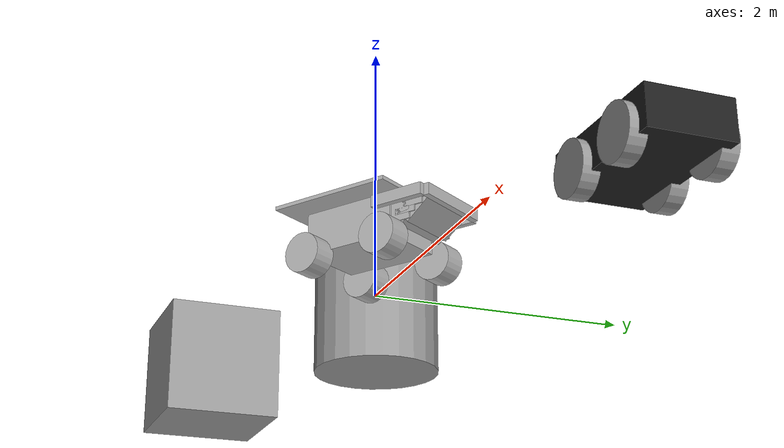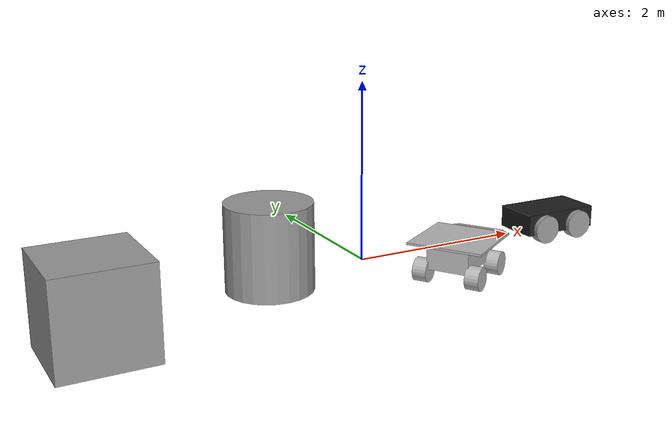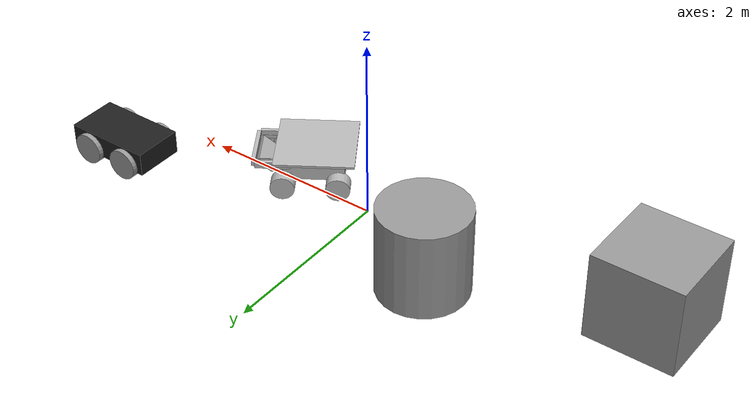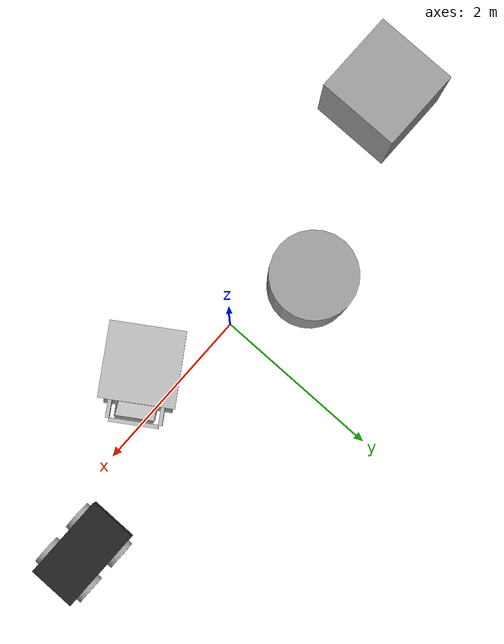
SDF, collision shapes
<?xml version='1.0'?>
<sdf version='1.7'>
  <model name='obstacles'>
    <link name='link_1'>
      <inertial>
        <mass>1</mass>
        <inertia>
          <ixx>0.166667</ixx>
          <ixy>0</ixy>
          <ixz>0</ixz>
          <iyy>0.166667</iyy>
          <iyz>0</iyz>
          <izz>0.166667</izz>
        </inertia>
      </inertial>
      <pose>-3.12052 -0.451753 0.207035 0 -0 0</pose>
      <visual name='visual'>
        <pose>0 0 0 0 -0 0</pose>
        <geometry>
          <box>
            <size>1 1 1</size>
          </box>
        </geometry>
        <material>
          <lighting>1</lighting>
          <script>
            <uri>file://media/materials/scripts/gazebo.material</uri>
            <name>Gazebo/Grey</name>
          </script>
          <shader type='pixel'/>
        </material>
        <transparency>0</transparency>
        <cast_shadows>1</cast_shadows>
      </visual>
      <collision name='collision'>
        <laser_retro>0</laser_retro>
        <max_contacts>10</max_contacts>
        <pose>0 0 0 0 -0 0</pose>
        <geometry>
          <box>
            <size>1 1 1</size>
          </box>
        </geometry>
        <surface>
          <friction>
            <ode>
              <mu>1</mu>
              <mu2>1</mu2>
              <fdir1>0 0 0</fdir1>
              <slip1>0</slip1>
              <slip2>0</slip2>
            </ode>
            <torsional>
              <coefficient>1</coefficient>
              <patch_radius>0</patch_radius>
              <surface_radius>0</surface_radius>
              <use_patch_radius>1</use_patch_radius>
              <ode>
                <slip>0</slip>
              </ode>
            </torsional>
          </friction>
          <bounce>
            <restitution_coefficient>0</restitution_coefficient>
            <threshold>1e+06</threshold>
          </bounce>
          <contact>
            <collide_without_contact>0</collide_without_contact>
            <collide_without_contact_bitmask>1</collide_without_contact_bitmask>
            <collide_bitmask>1</collide_bitmask>
            <ode>
              <soft_cfm>0</soft_cfm>
              <soft_erp>0.2</soft_erp>
              <kp>1e+13</kp>
              <kd>1</kd>
              <max_vel>0.01</max_vel>
              <min_depth>0</min_depth>
            </ode>
            <bullet>
              <split_impulse>1</split_impulse>
              <split_impulse_penetration_threshold>-0.01</split_impulse_penetration_threshold>
              <soft_cfm>0</soft_cfm>
              <soft_erp>0.2</soft_erp>
              <kp>1e+13</kp>
              <kd>1</kd>
            </bullet>
          </contact>
        </surface>
      </collision>
    </link>
    <link name='link_2'>
      <inertial>
        <mass>1</mass>
        <inertia>
          <ixx>0.145833</ixx>
          <ixy>0</ixy>
          <ixz>0</ixz>
          <iyy>0.145833</iyy>
          <iyz>0</iyz>
          <izz>0.125</izz>
        </inertia>
      </inertial>
      <pose>-0.964727 0.367734 0.207035 0 -0 0</pose>
      <visual name='visual'>
        <pose>0 0 0 0 -0 0</pose>
        <geometry>
          <cylinder>
            <radius>0.5</radius>
            <length>1</length>
          </cylinder>
        </geometry>
        <material>
          <lighting>1</lighting>
          <script>
            <uri>file://media/materials/scripts/gazebo.material</uri>
            <name>Gazebo/Grey</name>
          </script>
          <shader type='pixel'/>
        </material>
        <transparency>0</transparency>
        <cast_shadows>1</cast_shadows>
      </visual>
      <collision name='collision'>
        <laser_retro>0</laser_retro>
        <max_contacts>10</max_contacts>
        <pose>0 0 0 0 -0 0</pose>
        <geometry>
          <cylinder>
            <radius>0.5</radius>
            <length>1</length>
          </cylinder>
        </geometry>
        <surface>
          <friction>
            <ode>
              <mu>1</mu>
              <mu2>1</mu2>
              <fdir1>0 0 0</fdir1>
              <slip1>0</slip1>
              <slip2>0</slip2>
            </ode>
            <torsional>
              <coefficient>1</coefficient>
              <patch_radius>0</patch_radius>
              <surface_radius>0</surface_radius>
              <use_patch_radius>1</use_patch_radius>
              <ode>
                <slip>0</slip>
              </ode>
            </torsional>
          </friction>
          <bounce>
            <restitution_coefficient>0</restitution_coefficient>
            <threshold>1e+06</threshold>
          </bounce>
          <contact>
            <collide_without_contact>0</collide_without_contact>
            <collide_without_contact_bitmask>1</collide_without_contact_bitmask>
            <collide_bitmask>1</collide_bitmask>
            <ode>
              <soft_cfm>0</soft_cfm>
              <soft_erp>0.2</soft_erp>
              <kp>1e+13</kp>
              <kd>1</kd>
              <max_vel>0.01</max_vel>
              <min_depth>0</min_depth>
            </ode>
            <bullet>
              <split_impulse>1</split_impulse>
              <split_impulse_penetration_threshold>-0.01</split_impulse_penetration_threshold>
              <soft_cfm>0</soft_cfm>
              <soft_erp>0.2</soft_erp>
              <kp>1e+13</kp>
              <kd>1</kd>
            </bullet>
          </contact>
        </surface>
      </collision>
    </link>
    <model name='husky'>
      <pose>3.02374 0.473848 -0.14772 0 -0 0</pose>
      <link name='base_link'>
        <collision name='collision'>
          <pose>0 0 0.1 0 -0 0</pose>
          <geometry>
            <box>
              <size>1.0074 0.5709 0.2675</size>
            </box>
          </geometry>
        </collision>
        <inertial>
          <mass>33.855</mass>
          <pose>-0.085613 -0.00084 0.238145 0 -0 0</pose>
          <inertia>
            <ixx>2.2343</ixx>
            <ixy>-0.023642</ixy>
            <ixz>0.275174</ixz>
            <iyy>3.42518</iyy>
            <iyz>0.00239624</iyz>
            <izz>2.1241</izz>
          </inertia>
        </inertial>
        <visual name='base'>
          <pose>0 0 0 0 -0 0</pose>
          <geometry>
            <mesh>
              <uri>model://husky/meshes/base_link.stl</uri>
            </mesh>
          </geometry>
          <material>
            <script>
              <name>Gazebo/FlatBlack</name>
              <uri>__default__</uri>
            </script>
          </material>
        </visual>
        <visual name='top_plate'>
          <pose>0 0 0 0 -0 0</pose>
          <geometry>
            <mesh>
              <uri>model://husky/meshes/top_plate.stl</uri>
            </mesh>
          </geometry>
          <material>
            <script>
              <name>Gazebo/Yellow</name>
              <uri>__default__</uri>
            </script>
          </material>
        </visual>
        <visual name='front_bumper'>
          <pose>0.47 0 0.091 0 -0 0</pose>
          <geometry>
            <mesh>
              <uri>model://husky/meshes/bumper.stl</uri>
            </mesh>
          </geometry>
          <material>
            <script>
              <name>Gazebo/FlatBlack</name>
              <uri>__default__</uri>
            </script>
          </material>
        </visual>
        <visual name='rear_bumper'>
          <pose>-0.47 0 0.091 0 -0 3.141</pose>
          <geometry>
            <mesh>
              <uri>model://husky/meshes/bumper.stl</uri>
            </mesh>
          </geometry>
          <material>
            <script>
              <name>Gazebo/FlatBlack</name>
              <uri>__default__</uri>
            </script>
          </material>
        </visual>
        <visual name='user_rail'>
          <pose>0.272 0 0.245 0 -0 0</pose>
          <geometry>
            <mesh>
              <uri>model://husky/meshes/user_rail.stl</uri>
            </mesh>
          </geometry>
          <material>
            <script>
              <name>Gazebo/Grey</name>
              <uri>__default__</uri>
            </script>
          </material>
        </visual>
      </link>
      <link name='back_left_wheel'>
        <pose>-0.256 0.285475 0.035 0 -0 0</pose>
        <inertial>
          <mass>2.6357</mass>
          <pose>0 0 0 0 -0 0</pose>
          <inertia>
            <ixx>0.0246688</ixx>
            <ixy>0</ixy>
            <ixz>0</ixz>
            <iyy>0.0246688</iyy>
            <iyz>0</iyz>
            <izz>0.0441058</izz>
          </inertia>
        </inertial>
        <collision name='back_left_wheel_collision'>
          <pose>0 0 0 -1.5707 0 0</pose>
          <geometry>
            <cylinder>
              <radius>0.17775</radius>
              <length>0.1143</length>
            </cylinder>
          </geometry>
          <surface>
            <friction>
              <ode>
                <mu>100000</mu>
                <mu2>100000</mu2>
                <slip1>0</slip1>
                <slip2>0</slip2>
              </ode>
            </friction>
          </surface>
        </collision>
        <visual name='back_left_wheel'>
          <pose>0 0 0 -3.14159 0 0</pose>
          <geometry>
            <mesh>
              <uri>model://husky/meshes/wheel.stl</uri>
            </mesh>
          </geometry>
          <material>
            <script>
              <name>Gazebo/Grey</name>
              <uri>__default__</uri>
            </script>
          </material>
        </visual>
      </link>
      <joint name='back_left_joint' type='revolute'>
        <parent>base_link</parent>
        <child>back_left_wheel</child>
        <axis>
          <xyz expressed_in='__model__'>0 1 0</xyz>
          <limit>
            <lower>-1e+16</lower>
            <upper>1e+16</upper>
          </limit>
        </axis>
        <physics>
          <ode>
            <limit>
              <cfm>0</cfm>
              <erp>0.9</erp>
            </limit>
          </ode>
        </physics>
      </joint>
      <link name='back_right_wheel'>
        <pose>-0.256 -0.285475 0.035 0 -0 0</pose>
        <inertial>
          <mass>2.6357</mass>
          <pose>0 0 0 0 -0 0</pose>
          <inertia>
            <ixx>0.0246688</ixx>
            <ixy>0</ixy>
            <ixz>0</ixz>
            <iyy>0.0246688</iyy>
            <iyz>0</iyz>
            <izz>0.0441058</izz>
          </inertia>
        </inertial>
        <collision name='back_right_wheel_collision'>
          <pose>0 0 0 -1.5707 0 0</pose>
          <geometry>
            <cylinder>
              <radius>0.17775</radius>
              <length>0.1143</length>
            </cylinder>
          </geometry>
          <surface>
            <friction>
              <ode>
                <mu>100000</mu>
                <mu2>100000</mu2>
                <slip1>0</slip1>
                <slip2>0</slip2>
              </ode>
            </friction>
          </surface>
        </collision>
        <visual name='back_right_wheel'>
          <pose>0 0 0 -3.14159 0 0</pose>
          <geometry>
            <mesh>
              <uri>model://husky/meshes/wheel.stl</uri>
            </mesh>
          </geometry>
          <material>
            <script>
              <name>Gazebo/Grey</name>
              <uri>__default__</uri>
            </script>
          </material>
        </visual>
      </link>
      <joint name='back_right_joint' type='revolute'>
        <parent>base_link</parent>
        <child>back_right_wheel</child>
        <axis>
          <xyz expressed_in='__model__'>0 1 0</xyz>
          <limit>
            <lower>-1e+16</lower>
            <upper>1e+16</upper>
          </limit>
        </axis>
        <physics>
          <ode>
            <limit>
              <cfm>0</cfm>
              <erp>0.9</erp>
            </limit>
          </ode>
        </physics>
      </joint>
      <link name='front_left_wheel'>
        <pose>0.256 0.285475 0.035 0 -0 0</pose>
        <inertial>
          <mass>2.6357</mass>
          <pose>0 0 0 0 -0 0</pose>
          <inertia>
            <ixx>0.0246688</ixx>
            <ixy>0</ixy>
            <ixz>0</ixz>
            <iyy>0.0246688</iyy>
            <iyz>0</iyz>
            <izz>0.0441058</izz>
          </inertia>
        </inertial>
        <collision name='front_left_wheel_collision'>
          <pose>0 0 0 -1.5707 0 0</pose>
          <geometry>
            <cylinder>
              <radius>0.17775</radius>
              <length>0.1143</length>
            </cylinder>
          </geometry>
          <surface>
            <friction>
              <ode>
                <mu>100000</mu>
                <mu2>100000</mu2>
                <slip1>0</slip1>
                <slip2>0</slip2>
              </ode>
            </friction>
          </surface>
        </collision>
        <visual name='front_left_wheel'>
          <pose>0 0 0 -3.14159 0 0</pose>
          <geometry>
            <mesh>
              <uri>model://husky/meshes/wheel.stl</uri>
            </mesh>
          </geometry>
          <material>
            <script>
              <name>Gazebo/Grey</name>
              <uri>__default__</uri>
            </script>
          </material>
        </visual>
      </link>
      <joint name='front_left_joint' type='revolute'>
        <parent>base_link</parent>
        <child>front_left_wheel</child>
        <axis>
          <xyz expressed_in='__model__'>0 1 0</xyz>
          <limit>
            <lower>-1e+16</lower>
            <upper>1e+16</upper>
          </limit>
        </axis>
        <physics>
          <ode>
            <limit>
              <cfm>0</cfm>
              <erp>0.9</erp>
            </limit>
          </ode>
        </physics>
      </joint>
      <link name='front_right_wheel'>
        <pose>0.256 -0.285475 0.035 0 -0 0</pose>
        <inertial>
          <mass>2.6357</mass>
          <pose>0 0 0 0 -0 0</pose>
          <inertia>
            <ixx>0.0246688</ixx>
            <ixy>0</ixy>
            <ixz>0</ixz>
            <iyy>0.0246688</iyy>
            <iyz>0</iyz>
            <izz>0.0441058</izz>
          </inertia>
        </inertial>
        <collision name='front_right_wheel_collision'>
          <pose>0 0 0 -1.5707 0 0</pose>
          <geometry>
            <cylinder>
              <radius>0.17775</radius>
              <length>0.1143</length>
            </cylinder>
          </geometry>
          <surface>
            <friction>
              <ode>
                <mu>100000</mu>
                <mu2>100000</mu2>
                <slip1>0</slip1>
                <slip2>0</slip2>
              </ode>
            </friction>
          </surface>
        </collision>
        <visual name='front_right_wheel'>
          <pose>0 0 0 -3.14159 0 0</pose>
          <geometry>
            <mesh>
              <uri>model://husky/meshes/wheel.stl</uri>
            </mesh>
          </geometry>
          <material>
            <script>
              <name>Gazebo/Grey</name>
              <uri>__default__</uri>
            </script>
          </material>
        </visual>
      </link>
      <joint name='front_right_joint' type='revolute'>
        <parent>base_link</parent>
        <child>front_right_wheel</child>
        <axis>
          <xyz expressed_in='__model__'>0 1 0</xyz>
          <limit>
            <lower>-1e+16</lower>
            <upper>1e+16</upper>
          </limit>
        </axis>
        <physics>
          <ode>
            <limit>
              <cfm>0</cfm>
              <erp>0.9</erp>
            </limit>
          </ode>
        </physics>
      </joint>
      <plugin name='husky_diff_controller' filename='libhusky_gazebo_plugins.so'>
        <alwaysOn>1</alwaysOn>
        <updateRate>100.0</updateRate>
        <backLeftJoint>back_left_joint</backLeftJoint>
        <backRightJoint>back_right_joint</backRightJoint>
        <frontLeftJoint>front_left_joint</frontLeftJoint>
        <frontRightJoint>front_right_joint</frontRightJoint>
        <wheelSeparation>0.5709</wheelSeparation>
        <wheelDiameter>0.3555</wheelDiameter>
        <torque>35</torque>
      </plugin>
    </model>
    <model name='mars_rover'>
      <static>1</static>
      <link name='link'>
        <collision name='solar_panel_collision'>
          <pose>0 -0.06945 0.47293 0 -0 0</pose>
          <geometry>
            <box>
              <size>0.87974 0.8821 0.02602</size>
            </box>
          </geometry>
        </collision>
        <collision name='chassis_collision'>
          <pose>0 -0.05 0.31475 0 -0 0</pose>
          <geometry>
            <box>
              <size>0.49522 0.67401 0.28915</size>
            </box>
          </geometry>
        </collision>
        <collision name='rear_left_bumper_collision'>
          <pose>0.30107 0.3835 0.38976 0 -0 0</pose>
          <geometry>
            <box>
              <size>0.04442 0.38897 0.07918</size>
            </box>
          </geometry>
        </collision>
        <collision name='rear_right_bumper_collision'>
          <pose>-0.30107 0.3835 0.38976 0 -0 0</pose>
          <geometry>
            <box>
              <size>0.04442 0.38897 0.07918</size>
            </box>
          </geometry>
        </collision>
        <collision name='rear_bumper_collision'>
          <pose>0 0.59414 0.38976 0 -0 0</pose>
          <geometry>
            <box>
              <size>0.56656 0.04442 0.07918</size>
            </box>
          </geometry>
        </collision>
        <collision name='bin_back_panel_collision'>
          <pose>0 0.47 0.32114 0.69137 -0 0</pose>
          <geometry>
            <box>
              <size>0.43774 0.212366 0.05173</size>
            </box>
          </geometry>
        </collision>
        <collision name='bin_left_panel_collision1'>
          <pose>0.22615 0.32897 0.33193 0 -0 0</pose>
          <geometry>
            <box>
              <size>0.01116 0.19338 0.16304</size>
            </box>
          </geometry>
        </collision>
        <collision name='bin_left_panel_collision2'>
          <pose>0.22615 0.471 0.39308 0 -0 0</pose>
          <geometry>
            <box>
              <size>0.01116 0.15 0.04</size>
            </box>
          </geometry>
        </collision>
        <collision name='bin_left_panel_collision3'>
          <pose>0.22615 0.45 0.35308 0 -0 0</pose>
          <geometry>
            <box>
              <size>0.01116 0.15 0.04</size>
            </box>
          </geometry>
        </collision>
        <collision name='bin_left_panel_collision4'>
          <pose>0.22615 0.39308 0.31308 0 -0 0</pose>
          <geometry>
            <box>
              <size>0.01116 0.15 0.04</size>
            </box>
          </geometry>
        </collision>
        <collision name='bin_right_panel_collision1'>
          <pose>-0.22615 0.32897 0.33193 0 -0 0</pose>
          <geometry>
            <box>
              <size>0.01116 0.19338 0.16304</size>
            </box>
          </geometry>
        </collision>
        <collision name='bin_right_panel_collision2'>
          <pose>-0.22615 0.471 0.39308 0 -0 0</pose>
          <geometry>
            <box>
              <size>0.01116 0.15 0.04</size>
            </box>
          </geometry>
        </collision>
        <collision name='bin_right_panel_collision3'>
          <pose>-0.22615 0.45 0.35308 0 -0 0</pose>
          <geometry>
            <box>
              <size>0.01116 0.15 0.04</size>
            </box>
          </geometry>
        </collision>
        <collision name='bin_right_panel_collision4'>
          <pose>-0.22615 0.39308 0.31308 0 -0 0</pose>
          <geometry>
            <box>
              <size>0.01116 0.15 0.04</size>
            </box>
          </geometry>
        </collision>
        <collision name='bin_front_panel_collision'>
          <pose>0 0.30047 0.32114 2.26207 -0 0</pose>
          <geometry>
            <box>
              <size>0.43774 0.212366 0.05173</size>
            </box>
          </geometry>
        </collision>
        <collision name='front_left_wheel_collision'>
          <pose>0.31103 -0.32115 0.1358 1.5707 0 1.5707</pose>
          <geometry>
            <cylinder>
              <radius>0.1358</radius>
              <length>0.1641</length>
            </cylinder>
          </geometry>
        </collision>
        <collision name='front_right_wheel_collision'>
          <pose>-0.31103 -0.32115 0.1358 1.5707 0 1.5707</pose>
          <geometry>
            <cylinder>
              <radius>0.1358</radius>
              <length>0.1641</length>
            </cylinder>
          </geometry>
        </collision>
        <collision name='rear_left_wheel_collision'>
          <pose>0.31103 0.28049 0.1358 1.5707 0 1.5707</pose>
          <geometry>
            <cylinder>
              <radius>0.1358</radius>
              <length>0.1641</length>
            </cylinder>
          </geometry>
        </collision>
        <collision name='rear_right_wheel_collision'>
          <pose>-0.31103 0.28049 0.1358 1.5707 0 1.5707</pose>
          <geometry>
            <cylinder>
              <radius>0.1358</radius>
              <length>0.1641</length>
            </cylinder>
          </geometry>
        </collision>
        <visual name='visual'>
          <geometry>
            <mesh>
              <uri>model://mars_rover/meshes/rover.dae</uri>
            </mesh>
          </geometry>
        </visual>
      </link>
      <pose>1.06151 -0.389826 -0.26635 0 0 -0.996172</pose>
    </model>
    <static>0</static>
    <allow_auto_disable>1</allow_auto_disable>
  </model>
</sdf>
